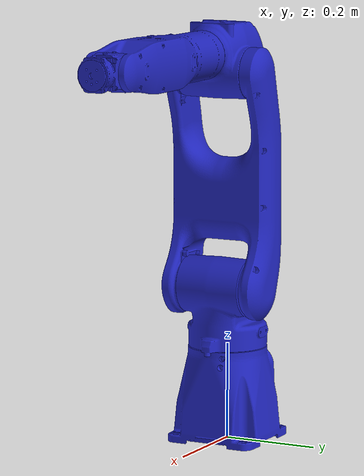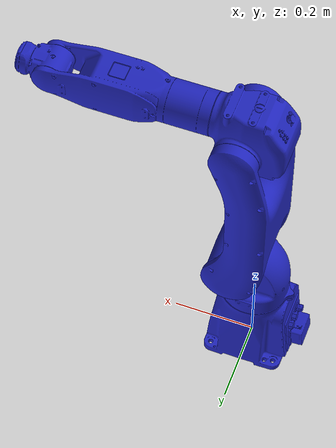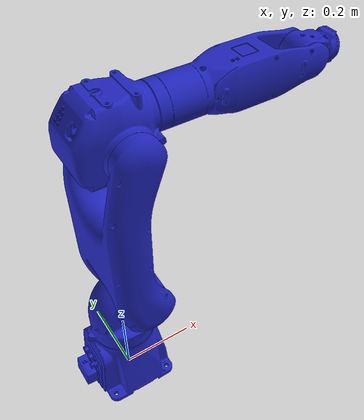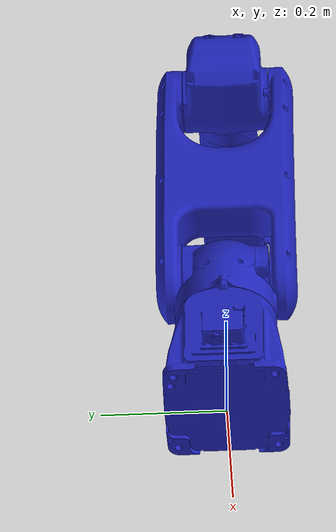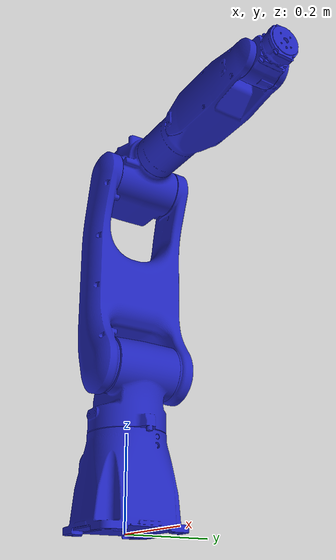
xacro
<?xml version="1.0"?>
<robot xmlns:xacro="http://ros.org/wiki/xacro"
       name="gp7" >

  <!-- common stuff -->
  <xacro:include filename="$(find motoman_gp7_support)/urdf/common.gp7.xacro" />

  <!-- ur5e -->
  <xacro:include filename="$(find motoman_gp7_support)/urdf/gp7.urdf.xacro" />

  <!-- arm -->
  <xacro:gp7_robot prefix="" />

  <link name="world" />

  <joint name="world_joint" type="fixed">
    <parent link="world" />
    <child link = "base_link" />
    <origin xyz="0.0 0.0 0.0" rpy="0.0 0.0 0.0" />
  </joint>

</robot>

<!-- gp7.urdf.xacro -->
<robot xmlns:xacro="http://ros.org/wiki/xacro">

  <xacro:include filename="$(find motoman_gp7_support)/urdf/gp7.transmission.xacro" />
  <xacro:include filename="$(find motoman_gp7_support)/urdf/gp7.gazebo.xacro" />

  <xacro:macro name="gp7_robot" params="prefix">

    <!-- Properties -->
    <material name="yaskawa_blue">
          <color rgba="0.12941 0.14902 0.74902 1" />
    </material>

    <!-- link list -->
    <link name="${prefix}base_link">
        <visual>
            <geometry>
                <mesh filename="package://motoman_gp7_support/meshes/visual/gp7_base_link.stl"/>
            </geometry>
            <material name="yaskawa_blue"/>
        </visual>
        <collision>
            <geometry>
                <mesh filename="package://motoman_gp7_support/meshes/collision/gp7_base_link.stl"/>
            </geometry>
        </collision>
    </link>
    <link name="${prefix}link_1_s">
        <visual>
            <geometry>
                <mesh filename="package://motoman_gp7_support/meshes/visual/gp7_link_1_s.stl"/>
            </geometry>
            <material name="yaskawa_blue"/>
        </visual>
        <collision>
            <geometry>
                <mesh filename="package://motoman_gp7_support/meshes/collision/gp7_link_1_s.stl"/>
            </geometry>
        </collision>
    </link>
    <link name="${prefix}link_2_l">
        <visual>
            <geometry>
                <mesh filename="package://motoman_gp7_support/meshes/visual/gp7_link_2_l.stl"/>
            </geometry>
            <material name="yaskawa_blue"/>
        </visual>
        <collision>
            <geometry>
                <mesh filename="package://motoman_gp7_support/meshes/collision/gp7_link_2_l.stl"/>
            </geometry>
        </collision>
    </link>
    <link name="${prefix}link_3_u">
        <visual>
            <geometry>
                <mesh filename="package://motoman_gp7_support/meshes/visual/gp7_link_3_u.stl"/>
            </geometry>
            <material name="yaskawa_blue"/>
        </visual>
        <collision>
            <geometry>
                <mesh filename="package://motoman_gp7_support/meshes/collision/gp7_link_3_u.stl"/>
            </geometry>
        </collision>
    </link>
    <link name="${prefix}link_4_r">
        <visual>
            <geometry>
                <mesh filename="package://motoman_gp7_support/meshes/visual/gp7_link_4_r.stl"/>
            </geometry>
            <material name="yaskawa_blue"/>
        </visual>
        <collision>
            <geometry>
                <mesh filename="package://motoman_gp7_support/meshes/collision/gp7_link_4_r.stl"/>
            </geometry>
        </collision>
    </link>
    <link name="${prefix}link_5_b">
        <visual>
            <geometry>
                <mesh filename="package://motoman_gp7_support/meshes/visual/gp7_link_5_b.stl"/>
            </geometry>
            <material name="yaskawa_blue"/>
        </visual>
        <collision>
            <geometry>
                <mesh filename="package://motoman_gp7_support/meshes/collision/gp7_link_5_b.stl"/>
            </geometry>
        </collision>
    </link>
    <link name="${prefix}link_6_t">
        <visual>
            <geometry>
                <mesh filename="package://motoman_gp7_support/meshes/visual/gp7_link_6_t.stl"/>
            </geometry>
            <material name="yaskawa_blue"/>
        </visual>
        <collision>
            <geometry>
                <mesh filename="package://motoman_gp7_support/meshes/collision/gp7_link_6_t.stl"/>
            </geometry>
        </collision>
    </link>
    <link name="${prefix}tool0"/>
    <!-- end of link list -->

    <!-- joint list -->
    <joint name="${prefix}joint_1_s" type="revolute">
        <parent link="${prefix}base_link"/>
        <child link="${prefix}link_1_s"/>
        <origin xyz="0 0 0.330" rpy="0 0 0" />
        <axis xyz="0 0 1" />
        <limit lower="-2.9670" upper="2.9670" effort="212.66" velocity="6.5448"/>
    </joint>
    <joint name="${prefix}joint_2_l" type="revolute">
        <parent link="${prefix}link_1_s"/>
        <child link="${prefix}link_2_l"/>
        <origin xyz="0.040 0 0" rpy="0 0 0" />
        <axis xyz="0 1 0" />
        <limit lower="-1.1344" upper="2.5307" effort="205.80" velocity="5.4977"/>
    </joint>
    <joint name="${prefix}joint_3_u" type="revolute">
        <parent link="${prefix}link_2_l"/>
        <child link="${prefix}link_3_u"/>
        <origin xyz="0 0 0.445" rpy="0 0 0" />
        <axis xyz="0 -1 0" />
        <limit lower="-1.2217" upper="3.3161" effort="106.82" velocity="7.1558"/>
    </joint>
    <joint name="${prefix}joint_4_r" type="revolute">
        <parent link="${prefix}link_3_u"/>
        <child link="${prefix}link_4_r"/>
        <origin xyz="0.440 0 0.040" rpy="0 0 0" />
        <axis xyz="-1 0 0" />
        <limit lower="-3.3161" upper="3.3161" effort="55.86" velocity="9.5993"/>
    </joint>
    <joint name="${prefix}joint_5_b" type="revolute">
        <parent link="${prefix}link_4_r"/>
        <child link="${prefix}link_5_b"/>
        <origin xyz="0 0 0" rpy="0 0 0" />
        <axis xyz="0 -1 0" />
        <limit lower="-2.3561" upper="2.3561" effort="32.68" velocity="9.5993"/>
    </joint>
    <joint name="${prefix}joint_6_t" type="revolute">
        <parent link="${prefix}link_5_b"/>
        <child link="${prefix}link_6_t"/>
        <origin xyz="0 0 0" rpy="0 0 0" />
        <axis xyz="-1 0 0" />
        <limit lower="-6.2944" upper="6.2944" effort="22.54" velocity="17.4845"/>
    </joint>
    <joint name="${prefix}joint_6_t-tool0" type="fixed">
        <origin xyz="0.080 0 0" rpy="3.1415926 -1.570796 0"/>
        <parent link="${prefix}link_6_t"/>
        <child link="${prefix}tool0"/>
    </joint>
    <!-- end of joint list -->

    <!-- ROS base_link to Robot Manufacturer World Coordinates transform -->
    <link name="${prefix}base" />
    <joint name="${prefix}base_link-base" type="fixed">
        <origin xyz="0 0 0.330" rpy="0 0 0"/>
        <parent link="${prefix}base_link"/>
        <child link="${prefix}base"/>
    </joint>

    </xacro:macro>
</robot>
